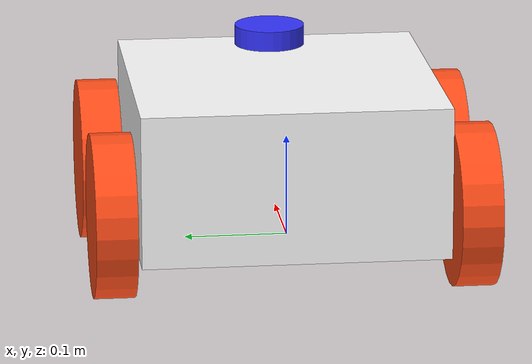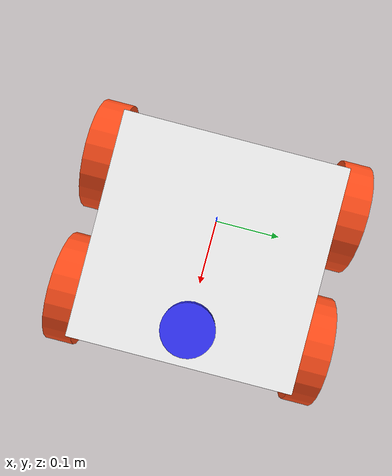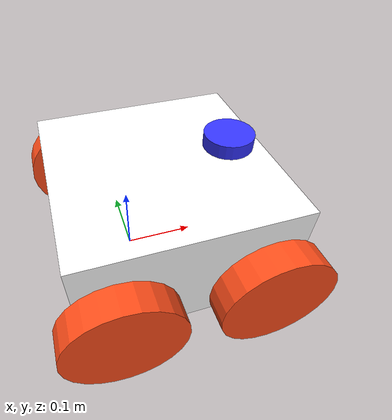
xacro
<robot xmlns:xacro="http://www.ros.org/wiki/xacro" name="amr_bot">

    <xacro:arg name="robot_namespace" default=""/>

    <xacro:arg name="sim_mode" default="false"/>
    <xacro:arg name="use_ros2_control" default = "false"/>

    <!-- Pass namespace as an argument if needed within amrurdf.urdf -->
    <xacro:property name="robot_namespace" value="$(arg robot_namespace)"/>

    <xacro:include filename = "amr_core.urdf" />
    <xacro:include filename = "lidar.xacro" />

    <xacro:if value="$(arg use_ros2_control)">
        <xacro:include filename="ros2_control.xacro" />
    </xacro:if>
    <xacro:unless value="$(arg use_ros2_control)">
        <xacro:include filename="gazebo_control.xacro" />
    </xacro:unless>

</robot>

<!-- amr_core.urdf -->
<robot xmlns:xacro="http://www.ros.org/wiki/xacro">

    <xacro:include filename="inertial_macros.xacro"/>

    <material name="white">
        <color rgba="1 1 1 1" />
    </material>

    <material name="orange">
        <color rgba="1 0.3 0.1 1"/>
    </material>

    <material name="blue">
        <color rgba="0.2 0.2 1 1"/>
    </material>

    <material name="black">
        <color rgba="0 0 0 1"/>
    </material>

    <!-- BASE LINK -->

    <link name="base_footprint">
    </link>

    <!-- CHASSIS LINK -->

    <joint name="chassis_joint" type="fixed">
        <parent link="base_footprint"/>
        <child link="base_link"/>
        <origin xyz="0 0 0"/>
    </joint>

    <link name="base_link">
        <visual>
            <origin xyz="0.05 0 0.075"/>
            <geometry>
                <box size="0.3 0.3 0.15"/>
            </geometry>
            <material name="white"/>
        </visual>
        <collision>
            <origin xyz="0.05 0 0.075"/>
            <geometry>
                <box size="0.3 0.3 0.15"/>
            </geometry>
        </collision>
        <xacro:inertial_box mass="0.5" x="0.3" y="0.3" z="0.15">
            <origin xyz="0.05 0 0.075" rpy="0 0 0"/>
        </xacro:inertial_box>
    </link>

    <!-- REAR LEFT WHEEL LINK -->

    <joint name="rear_left_wheel_joint" type="continuous">
        <parent link="base_link"/>
        <child link="rear_left_wheel"/>
        <origin xyz="-0.05 0.175 0.04" rpy="-${pi/2} 0 0" />
        <axis xyz="0 0 1"/>
    </joint>

    <link name="rear_left_wheel">
        <visual>
            <geometry>
                <cylinder radius="0.08" length="0.04"/>
            </geometry>
            <material name="orange"/>
        </visual>
        <collision>
            <geometry>
                <cylinder radius="0.08" length="0.04"/>
            </geometry>
        </collision>
        <xacro:inertial_cylinder mass="0.1" radius="0.08" length="0.04">
            <origin xyz="0 0 0" rpy="0 0 0"/>
        </xacro:inertial_cylinder>
    </link>

    <!-- REAR RIGHT WHEEL LINK -->

    <joint name="rear_right_wheel_joint" type="continuous">
        <parent link="base_link"/>
        <child link="rear_right_wheel"/>
        <origin xyz="-0.05 -0.175 0.04" rpy="${pi/2} 0 0" />
        <axis xyz="0 0 -1"/>
    </joint>

    <link name="rear_right_wheel">
        <visual>
            <geometry>
                <cylinder radius="0.08" length="0.04"/>
            </geometry>
            <material name="orange"/>
        </visual>
        <collision>
            <geometry>
                <cylinder radius="0.08" length="0.04"/>
            </geometry>
        </collision>
        <xacro:inertial_cylinder mass="0.1" radius="0.08" length="0.04">
            <origin xyz="0 0 0" rpy="0 0 0"/>
        </xacro:inertial_cylinder>
    </link>

    <!-- FRONT LEFT WHEEL LINK -->

    <joint name="front_left_wheel_joint" type="continuous">
        <parent link="base_link"/>
        <child link="front_left_wheel"/>
        <origin xyz="0.15 0.175 0.04" rpy="-${pi/2} 0 0" />
        <axis xyz="0 0 1"/>
    </joint>

    <link name="front_left_wheel">
        <visual>
            <geometry>
                <cylinder radius="0.08" length="0.04"/>
            </geometry>
            <material name="orange"/>
        </visual>
        <collision>
            <geometry>
                <cylinder radius="0.08" length="0.04"/>
            </geometry>
        </collision>
        <xacro:inertial_cylinder mass="0.1" radius="0.08" length="0.04">
            <origin xyz="0 0 0" rpy="0 0 0"/>
        </xacro:inertial_cylinder>
    </link>

    <!-- FRONT RIGHT WHEEL LINK -->

    <joint name="front_right_wheel_joint" type="continuous">
        <parent link="base_link"/>
        <child link="front_right_wheel"/>
        <origin xyz="0.15 -0.175 0.04" rpy="${pi/2} 0 0" />
        <axis xyz="0 0 -1"/>
    </joint>

    <link name="front_right_wheel">
        <visual>
            <geometry>
                <cylinder radius="0.08" length="0.04"/>
            </geometry>
            <material name="orange"/>
        </visual>
        <collision>
            <geometry>
                <cylinder radius="0.08" length="0.04"/>
            </geometry>
        </collision>
        <xacro:inertial_cylinder mass="0.1" radius="0.08" length="0.04">
            <origin xyz="0 0 0" rpy="0 0 0"/>
        </xacro:inertial_cylinder>
    </link>

    <gazebo reference="base_link">
        <material>Gazebo/Orange</material>
    </gazebo>

    <gazebo reference="rear_left_wheel">
        <material>Gazebo/White</material>
    </gazebo>

    <gazebo reference="rear_right_wheel">
        <material>Gazebo/White</material>
    </gazebo>

    <gazebo reference="front_left_wheel">
        <material>Gazebo/White</material>
    </gazebo>

    <gazebo reference="front_right_wheel">
        <material>Gazebo/White</material>
    </gazebo>

</robot>

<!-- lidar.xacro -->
<robot xmlns:xacro="http://www.ros.org/wiki/xacro" >

  <xacro:arg name="robot_namespace" default=""/>

    <!-- LiDAR -->

    <joint name = "lidar_joint" type = "fixed">
        <parent link = "base_link" />
        <child link = "lidar_frame"/>
        <origin xyz = "0.25 0 0.165" rpy = "0 0 0"/>
    </joint>

    <link name="lidar_frame">
        <visual>
            <origin xyz="-0.1 0 0"/>
            <geometry>
                <cylinder radius="0.035" length="0.02"/>
            </geometry>
            <material name="blue"/>
        </visual>
        <collision>
        <origin xyz="-0.1 0.0 0.0"/>
            <geometry>
                <cylinder radius="0.035" length="0.03"/>
            </geometry>
        </collision>
        <xacro:inertial_cylinder mass="0.1" radius="0.035" length="0.02">
            <origin xyz="-0.1 0 0" rpy="0 0 0"/>
        </xacro:inertial_cylinder>
    </link>

    <gazebo reference="lidar_frame">
        <material>Gazebo/Yellow</material>

        <sensor name="laser" type="ray">
            <pose>0 0 0 0 0 0</pose>
            <visualize>false</visualize>
            <update_ray>10</update_ray>
            <ray>
                <scan>
                    <horizontal>
                        <samples>360</samples>
                        <min_angle>-3.14</min_angle>
                        <max_angle>3.14</max_angle>
                    </horizontal>
                </scan>
                <range>
                    <min>0.3</min>
                    <max>12</max>
                </range>
            </ray>
            <plugin name = "laser_controller" filename = "libgazebo_ros_ray_sensor.so">
                <ros>
                    <namespace>${robot_namespace}</namespace>
                    <argument>~/out:=scan</argument>
                </ros>
                <output_type>sensor_msgs/LaserScan</output_type>
                <frame_name>lidar_frame</frame_name>
            </plugin>
        </sensor>

        <material>Gazebo/blue</material>

    </gazebo>

</robot>
